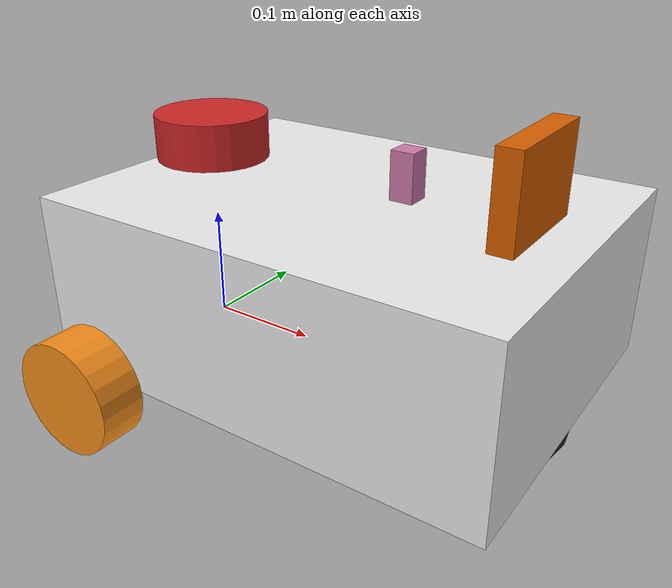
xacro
<?xml version="1.0"?>
<robot xmlns:xacro="http://www.ros.org/wiki/xacro" name = "rodolfo">

    <!-- Example link -->
    <xacro:include filename="properties.xacro"/>
    <xacro:include filename="robot_core.xacro"/>
    <xacro:include filename="lidar.xacro"/>
    <xacro:include filename="camera.xacro"/>
    <xacro:include filename="gazebo_control.xacro"/>
    <xacro:include filename="imu.xacro"/>

</robot>

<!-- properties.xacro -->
<robot xmlns:xacro="http://www.ros.org/wiki/xacro">

    <!-- Color Definitions -->
    <material name="white">
        <color rgba= "1 1 1 1"/>
    </material>

    <material name="orange">
        <color rgba= "1 0.3 0.1 1"/>
    </material>

    <material name="blue">
        <color rgba= "0.2 0.2 1 1"/>
    </material>

    <material name="black">
        <color rgba= "0 0 0 1"/>
    </material>

    <!-- Color Definitions -->
    <gazebo reference="chassis">
        <material>Gazebo/White</material>
    </gazebo>

    <gazebo reference="right_wheel">
        <material>Gazebo/Orange</material>
    </gazebo>

    <gazebo reference="left_wheel">
        <material>Gazebo/Orange</material>
    </gazebo>

    <gazebo reference="caster_wheel">
        <material>Gazebo/Blue</material>
    </gazebo>

    <gazebo reference="caster_wheel">
        <material>Gazebo/Black</material>
        <mu1 value="0.001"/>
        <mu2 value="0.001"/>
    </gazebo>

</robot>

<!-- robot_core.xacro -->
<robot xmlns:xacro="http://www.ros.org/wiki/xacro">

    <xacro:include filename="inertial_macros.xacro"/>

    <!-- base link -->
    <link name="base_link">
    </link>

    <joint name="base_link" type="fixed">
        <parent link="base_link"/>
        <child link="chassis"/>
        <origin xyz="-0.1 0 0"/>
    </joint>

    <!-- chassis link -->
    <link name="chassis">
        <visual>
            <origin xyz="0.25 0 0.075"/>
            <geometry>
                <box size="0.4 0.3 0.15"/>
            </geometry>
        </visual>
        <collision>
            <origin xyz="0.15 0 0.075"/>
            <geometry>
                <box size="0.3 0.3 0.15"/>
            </geometry>
        </collision>
        <xacro:inertial_box mass="0.8" x="0.3" y="0.3" z="0.15">
            <origin xyz="0.15 0 0.075" rpy="0 0 0"/>
        </xacro:inertial_box>
    </link>

    <!-- left wheel joint -->
    <joint name="left_wheel_joint" type="continuous">
        <parent link="base_link"/>
        <child link="left_wheel"/>
        <origin xyz="0 0.175 0" rpy="-${pi/2} 0 0"/>
        <axis xyz="0 0 1"/>
    </joint>

    <!-- left wheel link -->
    <link name="left_wheel">
        <visual>
            <geometry>
                <cylinder radius="0.05" length="0.04"/>
            </geometry>
        </visual>
	      <collision>
	          <geometry>
	              <sphere radius="0.05"/>
	          </geometry>
	      </collision>
        <xacro:inertial_cylinder mass="0.1" length="0.04" radius="0.05">
            <origin xyz="0 0 0" rpy="0 0 0"/>
        </xacro:inertial_cylinder>
    </link>

    <!-- right wheel joint -->
    <joint name="right_wheel_joint" type="continuous">
        <parent link="base_link"/>
        <child link="right_wheel"/>
        <origin xyz="0 -0.175 0" rpy="${pi/2} 0 0"/>
        <axis xyz="0 0 -1"/>
    </joint>

    <!-- right wheel link -->
    <link name="right_wheel">
        <visual>
            <geometry>
                <cylinder radius="0.05" length="0.04"/>
            </geometry>
        </visual>
	      <collision>
	          <geometry>
	              <sphere radius="0.05"/>
	          </geometry>
	      </collision>
        <xacro:inertial_cylinder mass="0.1" length="0.04" radius="0.05">
            <origin xyz="0 0 0" rpy="0 0 0"/>
        </xacro:inertial_cylinder>
    </link>

    <!-- caster wheel joint -->
    <joint name="caster_wheel_joint" type="fixed">
        <parent link="chassis"/>
        <child link="caster_wheel"/>
        <origin xyz="0.4 0 0"/>
    </joint>

    <!-- caster wheel link -->
    <link name="caster_wheel">
        <collision>
            <geometry>
                <sphere radius="0.05"/>
            </geometry>
        </collision>
        <visual>
            <geometry>
                <sphere radius="0.05"/>
            </geometry>
        </visual>
        <xacro:inertial_sphere mass="0.1" radius="0.05">
            <origin xyz="0 0 0" rpy="0 0 0"/>
        </xacro:inertial_sphere>

    </link>

    <!-- laser_frame -->
    <link name="camera_link">
        <visual>
            <geometry>
                <box size="0.02 0.1 0.1"/>
            </geometry>¿
        </visual>
        <xacro:inertial_box mass="0.01" x="0.02" y="0.1" z="0.1">
            <origin xyz="0 0 0" rpy="0 0 0"/>
        </xacro:inertial_box>
    </link>

    <joint name="camera_joint" type="fixed">
        <parent link="chassis"/>
        <child link="camera_link"/>
        <origin xyz="0.4 0 0.175" rpy="0 0 0"/>
    </joint>

    <!-- laser_frame -->
    <link name="imu_link">
        <visual>
            <geometry>
                <box size="0.02 0.02 0.04"/>
            </geometry>
        </visual>
        <xacro:inertial_box mass="0.02" x="0.2" y="0.02" z="0.04">
            <origin xyz="0 0 0" rpy="0 0 0"/>
        </xacro:inertial_box>
    </link>

    <joint name="imu_joint" type="fixed">
        <parent link="chassis"/>
        <child link="imu_link"/>
        <origin xyz="0.3 0 0.175" rpy="0 0 0"/>
    </joint>

</robot>

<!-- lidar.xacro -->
<robot xmlns:xacro="http://www.ros.org/wiki/xacro">

    <!-- lidar joint -->
    <joint name="laser_joint" type="fixed">
        <parent link="chassis"/>
        <child link="laser_frame"/>
        <origin xyz="0.1 0 0.175" rpy="0 0 0"/>
    </joint>

    <!-- laser_frame -->
    <link name="laser_frame">
        <visual>
            <geometry>
                <cylinder radius="0.05" length="0.04"/>
            </geometry>
        </visual>
        <collision>
            <geometry>
                <cylinder radius="0.05" length="0.04"/>
            </geometry>
        </collision>
        <xacro:inertial_cylinder mass="0.1" length="0.04" radius="0.05">
            <origin xyz="0 0 0" rpy="0 0 0"/>
        </xacro:inertial_cylinder>
    </link>

    <gazebo reference="laser_frame">
        <material>Gazebo/Red</material>
        <sensor name="laser" type="ray">
            <pose>0 0 0 0 0 0</pose>
            <visualize>false</visualize>
            <update_rate>10</update_rate>
            <ray>
                <scan>
                    <horizontal>
												<!--samples> is the number of simulated lidar rays to generate per complete laser sweep cycle.-->
                        <samples>360</samples>
												<!--resolution>: this number is multiplied by samples to determine the number range data points.-->
                        <resolution>1</resolution>
							          <min_angle>-3.14</min_angle>
                        <max_angle>3.14</max_angle>
                    </horizontal>
                </scan>
                <range>
                    <min>0.3</min>
                    <max>12</max>
                    <resolution>0.01</resolution>
                </range>
            </ray>
            <plugin name="laser_controller" filename="libgazebo_ros_ray_sensor.so">
                <ros>
                    <remapping>~/out:=scan</remapping>
                </ros>
                <output_type>sensor_msgs/LaserScan</output_type>
                <frame_name>laser_frame</frame_name>
            </plugin>
        </sensor>
    </gazebo>

</robot>
